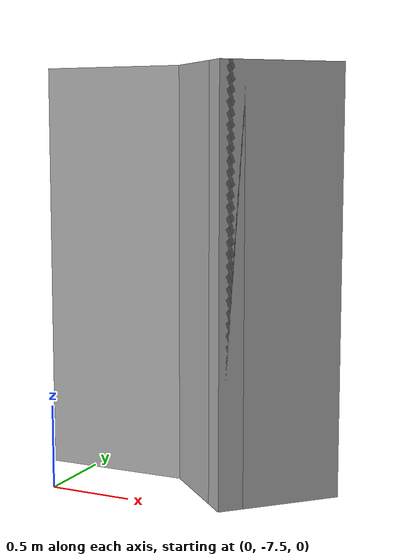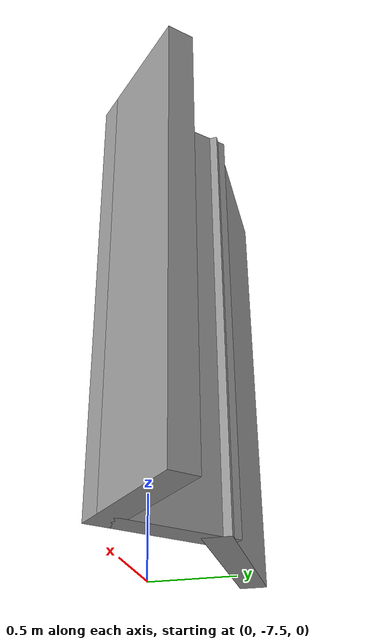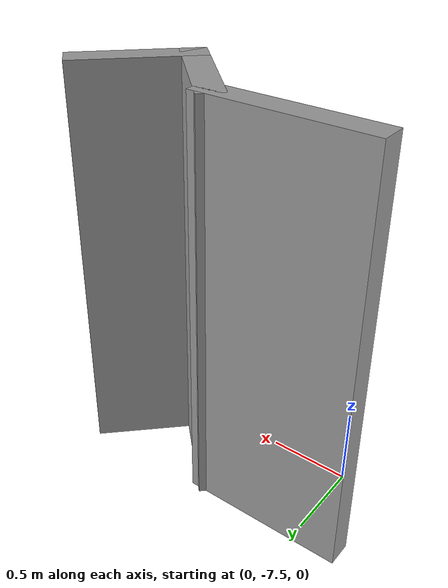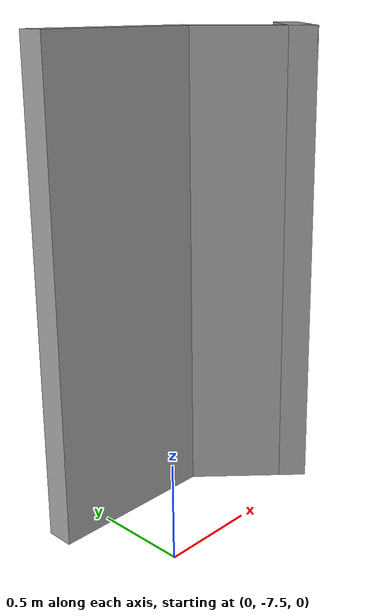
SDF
<?xml version='1.0'?>
<sdf version='1.7'>
  <model name='VL_marker'>
    <pose>0.656573 -3.745 0 0 -0 0</pose>
    <link name='Wall_0'>
      <collision name='Wall_0_Collision'>
        <geometry>
          <box>
            <size>1 0.15 2.5</size>
          </box>
        </geometry>
        <pose>0 0 1.25 0 -0 0</pose>
      </collision>
      <visual name='Wall_0_Visual'>
        <pose>0 0 1.25 0 -0 0</pose>
        <geometry>
          <box>
            <size>1 0.15 2.5</size>
          </box>
        </geometry>
        <material>
          <script>
            <uri>file://media/materials/scripts/gazebo.material</uri>
            <name>Gazebo/Grey</name>
          </script>
          <ambient>1 1 1 1</ambient>
        </material>
        <meta>
          <layer>0</layer>
        </meta>
      </visual>
      <pose>-0.439797 -3.21467 0 0 -0 0</pose>
    </link>
    <link name='Wall_4'>
      <collision name='Wall_4_Collision'>
        <geometry>
          <box>
            <size>0.75 0.15 2.5</size>
          </box>
        </geometry>
        <pose>0 0 1.25 0 -0 0</pose>
      </collision>
      <visual name='Wall_4_Visual'>
        <pose>0 0 1.25 0 -0 0</pose>
        <geometry>
          <box>
            <size>0.75 0.15 2.5</size>
          </box>
        </geometry>
        <material>
          <script>
            <uri>file://media/materials/scripts/gazebo.material</uri>
            <name>Gazebo/Grey</name>
          </script>
          <ambient>1 1 1 1</ambient>
        </material>
        <meta>
          <layer>0</layer>
        </meta>
      </visual>
      <pose>0.197335 -3.42681 0 0 -0 -0.785398</pose>
    </link>
    <link name='Wall_5'>
      <collision name='Wall_5_Collision'>
        <geometry>
          <box>
            <size>0.75 0.15 2.5</size>
          </box>
        </geometry>
        <pose>0 0 1.25 0 -0 0</pose>
      </collision>
      <visual name='Wall_5_Visual'>
        <pose>0 0 1.25 0 -0 0</pose>
        <geometry>
          <box>
            <size>0.75 0.15 2.5</size>
          </box>
        </geometry>
        <material>
          <script>
            <uri>file://media/materials/scripts/gazebo.material</uri>
            <name>Gazebo/Grey</name>
          </script>
          <ambient>1 1 1 1</ambient>
        </material>
        <meta>
          <layer>0</layer>
        </meta>
      </visual>
      <pose>0.621599 -3.42681 0 0 -0 0.785398</pose>
    </link>
    <static>1</static>
  </model>
</sdf>
